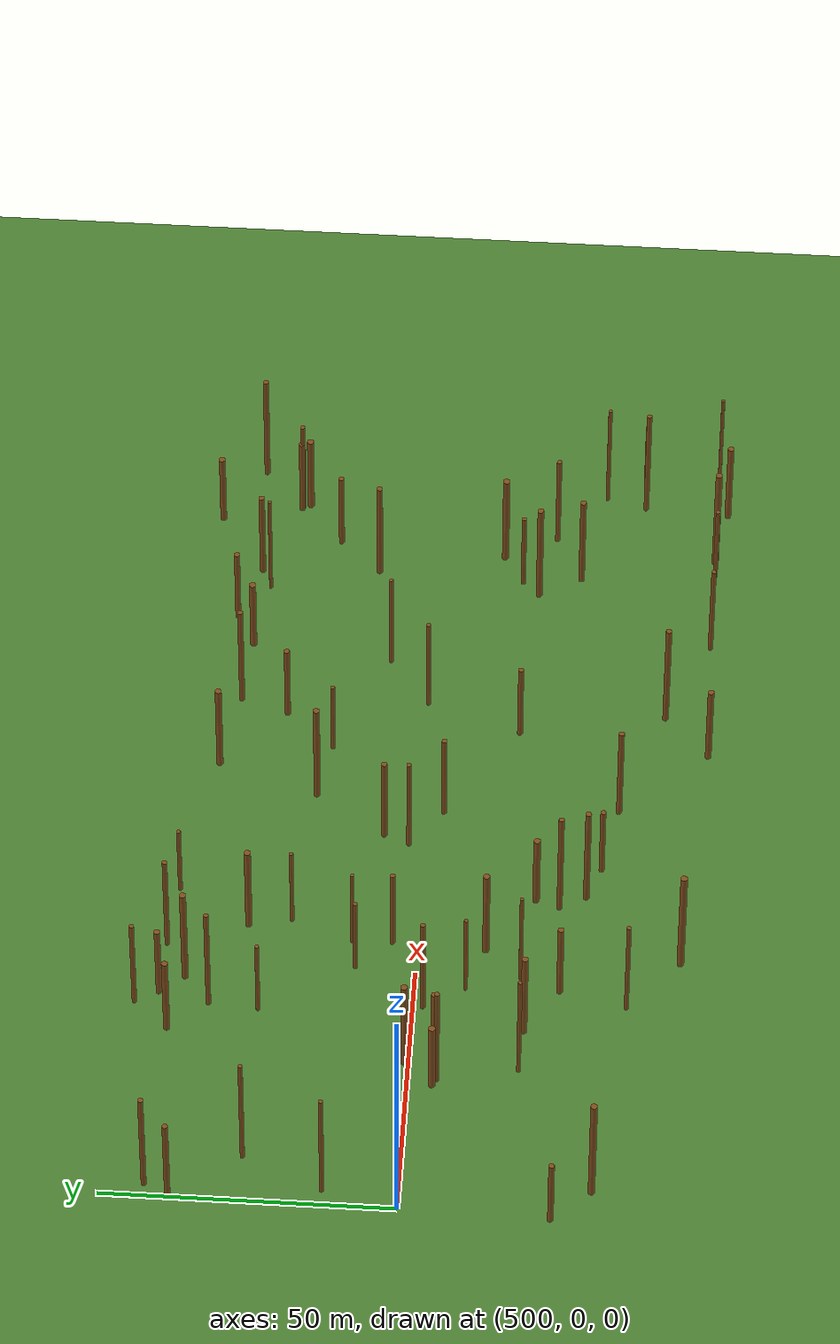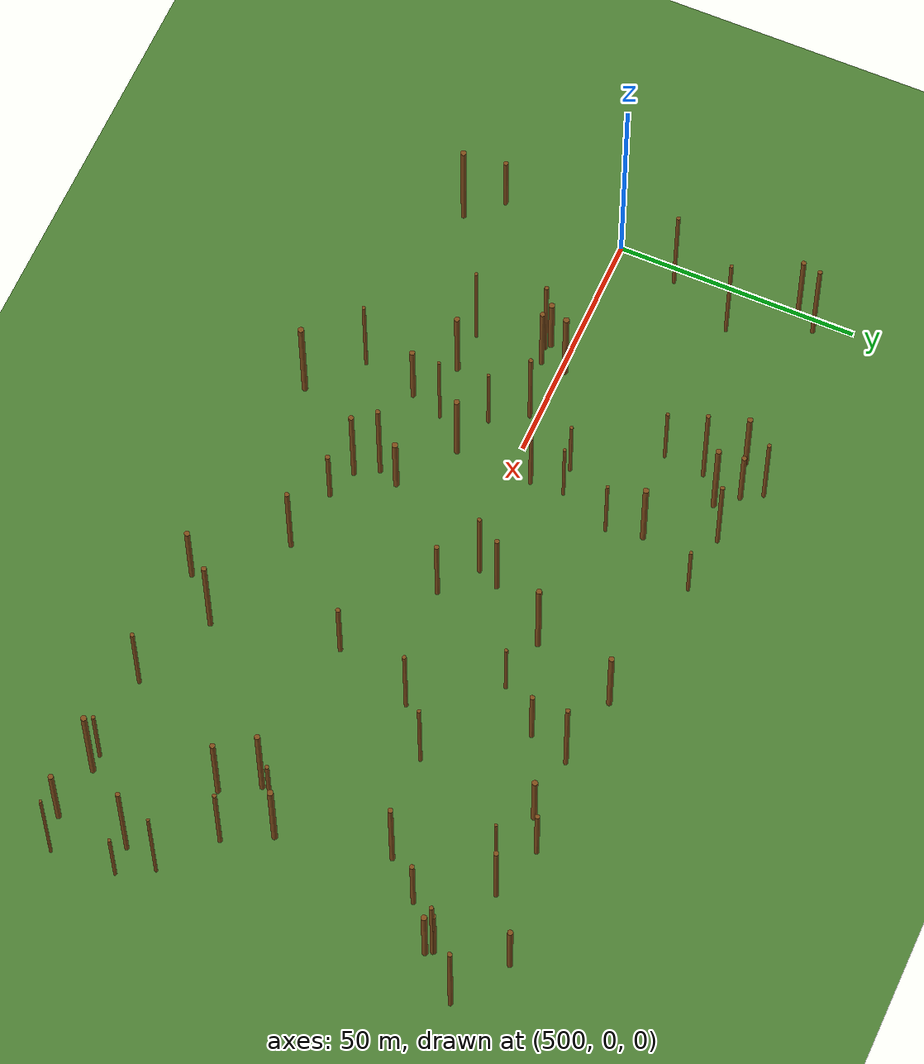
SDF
<sdf version="1.6">
 <world name="simple_forest">
  <include><uri>model://sun</uri></include>
  <model name="forest_ground">
   <pose>500 0 0 0 0 0</pose>
   <static>true</static>
   <link name="link">
    <collision name="collision">
     <geometry><plane><normal>0 0 1</normal><size>1200 200</size></plane></geometry>
     <surface><friction><ode><mu>100</mu><mu2>50</mu2></ode></friction></surface>
    </collision>
    <visual name="visual">
     <geometry><plane><normal>0 0 1</normal><size>1200 200</size></plane></geometry>
     <material><ambient>0.3 0.5 0.2 1</ambient><diffuse>0.3 0.5 0.2 1</diffuse></material>
    </visual>
   </link>
  </model>
  <model name="tree_0">
   <pose>643.0325304733049 -47.498924477733304 8.616053690744113 0 0 0</pose>
   <static>true</static>
   <link name="trunk">
    <collision name="collision">
     <geometry>
      <cylinder><radius>0.38250879551073574</radius><length>17.232107381488227</length></cylinder>
     </geometry>
    </collision>
    <visual name="visual">
     <geometry>
      <cylinder><radius>0.38250879551073574</radius><length>17.232107381488227</length></cylinder>
     </geometry>
     <material><ambient>0.5 0.3 0.1 1</ambient><diffuse>0.5 0.3 0.1 1</diffuse></material>
    </visual>
   </link>
  </model>
  <model name="tree_8">
   <pose>540.8658105401537 47.31157639793706 10.260203156366135 0 0 0</pose>
   <static>true</static>
   <link name="trunk">
    <collision name="collision">
     <geometry><cylinder><radius>0.413560313162506</radius><length>20.52040631273227</length></cylinder></geometry>
    </collision>
    <visual name="visual">
     <geometry><cylinder><radius>0.413560313162506</radius><length>20.52040631273227</length></cylinder></geometry>
     <material><ambient>0.5 0.3 0.1 1</ambient><diffuse>0.5 0.3 0.1 1</diffuse></material>
    </visual>
   </link>
  </model>
  <model name="tree_12">
   <pose>639.3275998217562 -13.516782102991577 8.547535153857439 0 0 0</pose>
   <static>true</static>
   <link name="trunk">
    <collision name="collision">
     <geometry>
      <cylinder><radius>0.4110542901350648</radius><length>17.095070307714877</length></cylinder>
     </geometry>
    </collision>
    <visual name="visual">
     <geometry>
      <cylinder><radius>0.4110542901350648</radius><length>17.095070307714877</length></cylinder>
     </geometry>
     <material><ambient>0.5 0.3 0.1 1</ambient><diffuse>0.5 0.3 0.1 1</diffuse></material>
    </visual>
   </link>
  </model>
  <model name="tree_20">
   <pose>565.7544528215193 -23.725839147706473 11.989114418012385 0 0 0</pose>
   <static>true</static>
   <link name="trunk">
    <collision name="collision">
     <geometry>
      <cylinder><radius>0.4753757970670621</radius><length>23.97822883602477</length></cylinder>
     </geometry>
    </collision>
    <visual name="visual">
     <geometry>
      <cylinder><radius>0.4753757970670621</radius><length>23.97822883602477</length></cylinder>
     </geometry>
     <material><ambient>0.5 0.3 0.1 1</ambient><diffuse>0.5 0.3 0.1 1</diffuse></material>
    </visual>
   </link>
  </model>
  <model name="tree_28">
   <pose>505.58025191979533 -32.134811946986865 11.852592849183836 0 0 0</pose>
   <static>true</static>
   <link name="trunk">
    <collision name="collision">
     <geometry>
      <cylinder><radius>0.5737883518034461</radius><length>23.70518569836767</length></cylinder>
     </geometry>
    </collision>
    <visual name="visual">
     <geometry>
      <cylinder><radius>0.5737883518034461</radius><length>23.70518569836767</length></cylinder>
     </geometry>
     <material><ambient>0.5 0.3 0.1 1</ambient><diffuse>0.5 0.3 0.1 1</diffuse></material>
    </visual>
   </link>
  </model>
  <model name="tree_49">
   <pose>554.8220593253495 -44.941167047511875 11.680137925399759 0 0 0</pose>
   <static>true</static>
   <link name="trunk">
    <collision name="collision">
     <geometry>
      <cylinder><radius>0.5997847405238179</radius><length>23.360275850799518</length></cylinder>
     </geometry>
    </collision>
    <visual name="visual">
     <geometry>
      <cylinder><radius>0.5997847405238179</radius><length>23.360275850799518</length></cylinder>
     </geometry>
     <material><ambient>0.5 0.3 0.1 1</ambient><diffuse>0.5 0.3 0.1 1</diffuse></material>
    </visual>
   </link>
  </model>
  <model name="tree_54">
   <pose>560.210640171562 21.840827529632605 8.98353912747282 0 0 0</pose>
   <static>true</static>
   <link name="trunk">
    <collision name="collision">
     <geometry>
      <cylinder><radius>0.3464390475822192</radius><length>17.96707825494564</length></cylinder>
     </geometry>
    </collision>
    <visual name="visual">
     <geometry>
      <cylinder><radius>0.3464390475822192</radius><length>17.96707825494564</length></cylinder>
     </geometry>
     <material><ambient>0.5 0.3 0.1 1</ambient><diffuse>0.5 0.3 0.1 1</diffuse></material>
    </visual>
   </link>
  </model>
  <model name="tree_58">
   <pose>599.0847553855274 17.521255360409015 8.099433069735621 0 0 0</pose>
   <static>true</static>
   <link name="trunk">
    <collision name="collision">
     <geometry>
      <cylinder><radius>0.3705611685002793</radius><length>16.198866139471242</length></cylinder>
     </geometry>
    </collision>
    <visual name="visual">
     <geometry>
      <cylinder><radius>0.3705611685002793</radius><length>16.198866139471242</length></cylinder>
     </geometry>
     <material><ambient>0.5 0.3 0.1 1</ambient><diffuse>0.5 0.3 0.1 1</diffuse></material>
    </visual>
   </link>
  </model>
  <model name="tree_67">
   <pose>657.4365545336253 -49.21768928478421 8.996893760999889 0 0 0</pose>
   <static>true</static>
   <link name="trunk">
    <collision name="collision">
     <geometry>
      <cylinder><radius>0.5451312405346385</radius><length>17.993787521999778</length></cylinder>
     </geometry>
    </collision>
    <visual name="visual">
     <geometry>
      <cylinder><radius>0.5451312405346385</radius><length>17.993787521999778</length></cylinder>
     </geometry>
     <material><ambient>0.5 0.3 0.1 1</ambient><diffuse>0.5 0.3 0.1 1</diffuse></material>
    </visual>
   </link>
  </model>
  <model name="tree_73">
   <pose>640.7422435283659 -23.80447375656518 10.258402105631957 0 0 0</pose>
   <static>true</static>
   <link name="trunk">
    <collision name="collision">
     <geometry>
      <cylinder><radius>0.5223692725043793</radius><length>20.516804211263914</length></cylinder>
     </geometry>
    </collision>
    <visual name="visual">
     <geometry>
      <cylinder><radius>0.5223692725043793</radius><length>20.516804211263914</length></cylinder>
     </geometry>
     <material><ambient>0.5 0.3 0.1 1</ambient><diffuse>0.5 0.3 0.1 1</diffuse></material>
    </visual>
   </link>
  </model>
  <model name="tree_87">
   <pose>645.0669212215514 -10.03216156399391 10.18107866239361 0 0 0</pose>
   <static>true</static>
   <link name="trunk">
    <collision name="collision">
     <geometry><cylinder><radius>0.594344906159478</radius><length>20.36215732478722</length></cylinder></geometry>
    </collision>
    <visual name="visual">
     <geometry><cylinder><radius>0.594344906159478</radius><length>20.36215732478722</length></cylinder></geometry>
     <material><ambient>0.5 0.3 0.1 1</ambient><diffuse>0.5 0.3 0.1 1</diffuse></material>
    </visual>
   </link>
  </model>
  <model name="tree_102">
   <pose>636.6114472081377 -16.48117445901991 11.25569068770366 0 0 0</pose>
   <static>true</static>
   <link name="trunk">
    <collision name="collision">
     <geometry>
      <cylinder><radius>0.5455270393609992</radius><length>22.51138137540732</length></cylinder>
     </geometry>
    </collision>
    <visual name="visual">
     <geometry>
      <cylinder><radius>0.5455270393609992</radius><length>22.51138137540732</length></cylinder>
     </geometry>
     <material><ambient>0.5 0.3 0.1 1</ambient><diffuse>0.5 0.3 0.1 1</diffuse></material>
    </visual>
   </link>
  </model>
  <model name="tree_106">
   <pose>499.4333973203326 -25.601556042156115 7.527724090690159 0 0 0</pose>
   <static>true</static>
   <link name="trunk">
    <collision name="collision">
     <geometry>
      <cylinder><radius>0.4968174033335352</radius><length>15.055448181380317</length></cylinder>
     </geometry>
    </collision>
    <visual name="visual">
     <geometry>
      <cylinder><radius>0.4968174033335352</radius><length>15.055448181380317</length></cylinder>
     </geometry>
     <material><ambient>0.5 0.3 0.1 1</ambient><diffuse>0.5 0.3 0.1 1</diffuse></material>
    </visual>
   </link>
  </model>
  <model name="tree_116">
   <pose>544.7507002932718 -36.16259384838443 10.96974906149526 0 0 0</pose>
   <static>true</static>
   <link name="trunk">
    <collision name="collision">
     <geometry>
      <cylinder><radius>0.36937844391845603</radius><length>21.93949812299052</length></cylinder>
     </geometry>
    </collision>
    <visual name="visual">
     <geometry>
      <cylinder><radius>0.36937844391845603</radius><length>21.93949812299052</length></cylinder>
     </geometry>
     <material><ambient>0.5 0.3 0.1 1</ambient><diffuse>0.5 0.3 0.1 1</diffuse></material>
    </visual>
   </link>
  </model>
  <model name="tree_119">
   <pose>588.2386200621829 19.55229864979681 11.327972880590348 0 0 0</pose>
   <static>true</static>
   <link name="trunk">
    <collision name="collision">
     <geometry>
      <cylinder><radius>0.5570196096911803</radius><length>22.655945761180696</length></cylinder>
     </geometry>
    </collision>
    <visual name="visual">
     <geometry>
      <cylinder><radius>0.5570196096911803</radius><length>22.655945761180696</length></cylinder>
     </geometry>
     <material><ambient>0.5 0.3 0.1 1</ambient><diffuse>0.5 0.3 0.1 1</diffuse></material>
    </visual>
   </link>
  </model>
  <model name="tree_122">
   <pose>550.6709866365007 10.325258894124133 8.59710817310718 0 0 0</pose>
   <static>true</static>
   <link name="trunk">
    <collision name="collision">
     <geometry>
      <cylinder><radius>0.36616160829714567</radius><length>17.19421634621436</length></cylinder>
     </geometry>
    </collision>
    <visual name="visual">
     <geometry>
      <cylinder><radius>0.36616160829714567</radius><length>17.19421634621436</length></cylinder>
     </geometry>
     <material><ambient>0.5 0.3 0.1 1</ambient><diffuse>0.5 0.3 0.1 1</diffuse></material>
    </visual>
   </link>
  </model>
  <model name="tree_125">
   <pose>626.034391364324 -47.30335480948623 10.32195991512387 0 0 0</pose>
   <static>true</static>
   <link name="trunk">
    <collision name="collision">
     <geometry>
      <cylinder><radius>0.4182060769019114</radius><length>20.64391983024774</length></cylinder>
     </geometry>
    </collision>
    <visual name="visual">
     <geometry>
      <cylinder><radius>0.4182060769019114</radius><length>20.64391983024774</length></cylinder>
     </geometry>
     <material><ambient>0.5 0.3 0.1 1</ambient><diffuse>0.5 0.3 0.1 1</diffuse></material>
    </visual>
   </link>
  </model>
  <model name="tree_131">
   <pose>655.2371086914505 25.423320405952623 8.496803411812664 0 0 0</pose>
   <static>true</static>
   <link name="trunk">
    <collision name="collision">
     <geometry>
      <cylinder><radius>0.5848835198147966</radius><length>16.993606823625328</length></cylinder>
     </geometry>
    </collision>
    <visual name="visual">
     <geometry>
      <cylinder><radius>0.5848835198147966</radius><length>16.993606823625328</length></cylinder>
     </geometry>
     <material><ambient>0.5 0.3 0.1 1</ambient><diffuse>0.5 0.3 0.1 1</diffuse></material>
    </visual>
   </link>
  </model>
  <model name="tree_133">
   <pose>568.3298861107189 -28.203545909349636 11.334490491781203 0 0 0</pose>
   <static>true</static>
   <link name="trunk">
    <collision name="collision">
     <geometry>
      <cylinder><radius>0.5098394913738452</radius><length>22.668980983562406</length></cylinder>
     </geometry>
    </collision>
    <visual name="visual">
     <geometry>
      <cylinder><radius>0.5098394913738452</radius><length>22.668980983562406</length></cylinder>
     </geometry>
     <material><ambient>0.5 0.3 0.1 1</ambient><diffuse>0.5 0.3 0.1 1</diffuse></material>
    </visual>
   </link>
  </model>
  <model name="tree_142">
   <pose>639.2292550404314 32.87073110024582 9.677435725038386 0 0 0</pose>
   <static>true</static>
   <link name="trunk">
    <collision name="collision">
     <geometry>
      <cylinder><radius>0.5121925931118231</radius><length>19.35487145007677</length></cylinder>
     </geometry>
    </collision>
    <visual name="visual">
     <geometry>
      <cylinder><radius>0.5121925931118231</radius><length>19.35487145007677</length></cylinder>
     </geometry>
     <material><ambient>0.5 0.3 0.1 1</ambient><diffuse>0.5 0.3 0.1 1</diffuse></material>
    </visual>
   </link>
  </model>
  <model name="tree_144">
   <pose>542.7911773837732 -1.6502496116803869 11.155131071525611 0 0 0</pose>
   <static>true</static>
   <link name="trunk">
    <collision name="collision">
     <geometry>
      <cylinder><radius>0.43067234790116826</radius><length>22.310262143051222</length></cylinder>
     </geometry>
    </collision>
    <visual name="visual">
     <geometry>
      <cylinder><radius>0.43067234790116826</radius><length>22.310262143051222</length></cylinder>
     </geometry>
     <material><ambient>0.5 0.3 0.1 1</ambient><diffuse>0.5 0.3 0.1 1</diffuse></material>
    </visual>
   </link>
  </model>
  <model name="tree_153">
   <pose>585.7400294790435 -2.6739511240475267 9.627519063526073 0 0 0</pose>
   <static>true</static>
   <link name="trunk">
    <collision name="collision">
     <geometry>
      <cylinder><radius>0.45927657934373034</radius><length>19.255038127052146</length></cylinder>
     </geometry>
    </collision>
    <visual name="visual">
     <geometry>
      <cylinder><radius>0.45927657934373034</radius><length>19.255038127052146</length></cylinder>
     </geometry>
     <material><ambient>0.5 0.3 0.1 1</ambient><diffuse>0.5 0.3 0.1 1</diffuse></material>
    </visual>
   </link>
  </model>
  <model name="tree_156">
   <pose>540.5053257299123 26.2189609484103 8.581923199393028 0 0 0</pose>
   <static>true</static>
   <link name="trunk">
    <collision name="collision">
     <geometry>
      <cylinder><radius>0.3555449527312986</radius><length>17.163846398786056</length></cylinder>
     </geometry>
    </collision>
    <visual name="visual">
     <geometry>
      <cylinder><radius>0.3555449527312986</radius><length>17.163846398786056</length></cylinder>
     </geometry>
     <material><ambient>0.5 0.3 0.1 1</ambient><diffuse>0.5 0.3 0.1 1</diffuse></material>
    </visual>
   </link>
  </model>
  <model name="tree_165">
   <pose>567.2112011137185 -19.616448815777233 8.092257811057308 0 0 0</pose>
   <static>true</static>
   <link name="trunk">
    <collision name="collision">
     <geometry>
      <cylinder><radius>0.5981754368130661</radius><length>16.184515622114617</length></cylinder>
     </geometry>
    </collision>
    <visual name="visual">
     <geometry>
      <cylinder><radius>0.5981754368130661</radius><length>16.184515622114617</length></cylinder>
     </geometry>
     <material><ambient>0.5 0.3 0.1 1</ambient><diffuse>0.5 0.3 0.1 1</diffuse></material>
    </visual>
   </link>
  </model>
  <model name="tree_167">
   <pose>527.3468097789157 -4.948553511124572 11.8008333291309 0 0 0</pose>
   <static>true</static>
   <link name="trunk">
    <collision name="collision">
     <geometry><cylinder><radius>0.4328163012057985</radius><length>23.6016666582618</length></cylinder></geometry>
    </collision>
    <visual name="visual">
     <geometry><cylinder><radius>0.4328163012057985</radius><length>23.6016666582618</length></cylinder></geometry>
     <material><ambient>0.5 0.3 0.1 1</ambient><diffuse>0.5 0.3 0.1 1</diffuse></material>
    </visual>
   </link>
  </model>
  <model name="tree_170">
   <pose>663.8238558201163 -34.294290661912285 7.87532434450584 0 0 0</pose>
   <static>true</static>
   <link name="trunk">
    <collision name="collision">
     <geometry>
      <cylinder><radius>0.35214406449793034</radius><length>15.75064868901168</length></cylinder>
     </geometry>
    </collision>
    <visual name="visual">
     <geometry>
      <cylinder><radius>0.35214406449793034</radius><length>15.75064868901168</length></cylinder>
     </geometry>
     <material><ambient>0.5 0.3 0.1 1</ambient><diffuse>0.5 0.3 0.1 1</diffuse></material>
    </visual>
   </link>
  </model>
  <model name="tree_175">
   <pose>651.1583761684559 40.8411445212606 7.857049184279071 0 0 0</pose>
   <static>true</static>
   <link name="trunk">
    <collision name="collision">
     <geometry>
      <cylinder><radius>0.5479893478950179</radius><length>15.714098368558142</length></cylinder>
     </geometry>
    </collision>
    <visual name="visual">
     <geometry>
      <cylinder><radius>0.5479893478950179</radius><length>15.714098368558142</length></cylinder>
     </geometry>
     <material><ambient>0.5 0.3 0.1 1</ambient><diffuse>0.5 0.3 0.1 1</diffuse></material>
    </visual>
   </link>
  </model>
  <model name="tree_189">
   <pose>547.167658413623 -8.675242920067852 9.308896795758375 0 0 0</pose>
   <static>true</static>
   <link name="trunk">
    <collision name="collision">
     <geometry>
      <cylinder><radius>0.3562747624183581</radius><length>18.61779359151675</length></cylinder>
     </geometry>
    </collision>
    <visual name="visual">
     <geometry>
      <cylinder><radius>0.3562747624183581</radius><length>18.61779359151675</length></cylinder>
     </geometry>
     <material><ambient>0.5 0.3 0.1 1</ambient><diffuse>0.5 0.3 0.1 1</diffuse></material>
    </visual>
   </link>
  </model>
  <model name="tree_191">
   <pose>553.7274426944783 42.767276084444774 10.991250145610861 0 0 0</pose>
   <static>true</static>
   <link name="trunk">
    <collision name="collision">
     <geometry>
      <cylinder><radius>0.43143482852171344</radius><length>21.982500291221722</length></cylinder>
     </geometry>
    </collision>
    <visual name="visual">
     <geometry>
      <cylinder><radius>0.43143482852171344</radius><length>21.982500291221722</length></cylinder>
     </geometry>
     <material><ambient>0.5 0.3 0.1 1</ambient><diffuse>0.5 0.3 0.1 1</diffuse></material>
    </visual>
   </link>
  </model>
  <model name="tree_197">
   <pose>555.7524261116649 -11.64139867528501 10.04120445796447 0 0 0</pose>
   <static>true</static>
   <link name="trunk">
    <collision name="collision">
     <geometry>
      <cylinder><radius>0.5765604449794686</radius><length>20.08240891592894</length></cylinder>
     </geometry>
    </collision>
    <visual name="visual">
     <geometry>
      <cylinder><radius>0.5765604449794686</radius><length>20.08240891592894</length></cylinder>
     </geometry>
     <material><ambient>0.5 0.3 0.1 1</ambient><diffuse>0.5 0.3 0.1 1</diffuse></material>
    </visual>
   </link>
  </model>
  <model name="tree_202">
   <pose>556.3982429001029 4.343006295867305 9.108886751145187 0 0 0</pose>
   <static>true</static>
   <link name="trunk">
    <collision name="collision">
     <geometry>
      <cylinder><radius>0.43660338505995033</radius><length>18.217773502290374</length></cylinder>
     </geometry>
    </collision>
    <visual name="visual">
     <geometry>
      <cylinder><radius>0.43660338505995033</radius><length>18.217773502290374</length></cylinder>
     </geometry>
     <material><ambient>0.5 0.3 0.1 1</ambient><diffuse>0.5 0.3 0.1 1</diffuse></material>
    </visual>
   </link>
  </model>
  <model name="tree_207">
   <pose>594.2786250164713 36.97003133622154 9.701531048853386 0 0 0</pose>
   <static>true</static>
   <link name="trunk">
    <collision name="collision">
     <geometry>
      <cylinder><radius>0.5622571122162925</radius><length>19.403062097706773</length></cylinder>
     </geometry>
    </collision>
    <visual name="visual">
     <geometry>
      <cylinder><radius>0.5622571122162925</radius><length>19.403062097706773</length></cylinder>
     </geometry>
     <material><ambient>0.5 0.3 0.1 1</ambient><diffuse>0.5 0.3 0.1 1</diffuse></material>
    </visual>
   </link>
  </model>
  <model name="tree_208">
   <pose>530.6915759394858 -4.307192552575778 9.549893098731822 0 0 0</pose>
   <static>true</static>
   <link name="trunk">
    <collision name="collision">
     <geometry>
      <cylinder><radius>0.5167331482711928</radius><length>19.099786197463644</length></cylinder>
     </geometry>
    </collision>
    <visual name="visual">
     <geometry>
      <cylinder><radius>0.5167331482711928</radius><length>19.099786197463644</length></cylinder>
     </geometry>
     <material><ambient>0.5 0.3 0.1 1</ambient><diffuse>0.5 0.3 0.1 1</diffuse></material>
    </visual>
   </link>
  </model>
  <model name="tree_209">
   <pose>658.2335131634565 -34.56387812284511 12.346018152871086 0 0 0</pose>
   <static>true</static>
   <link name="trunk">
    <collision name="collision">
     <geometry>
      <cylinder><radius>0.4408471802954196</radius><length>24.69203630574217</length></cylinder>
     </geometry>
    </collision>
    <visual name="visual">
     <geometry>
      <cylinder><radius>0.4408471802954196</radius><length>24.69203630574217</length></cylinder>
     </geometry>
     <material><ambient>0.5 0.3 0.1 1</ambient><diffuse>0.5 0.3 0.1 1</diffuse></material>
    </visual>
   </link>
  </model>
  <model name="tree_229">
   <pose>640.2516992258329 12.08911631303041 11.104641883353544 0 0 0</pose>
   <static>true</static>
   <link name="trunk">
    <collision name="collision">
     <geometry>
      <cylinder><radius>0.5033293375870078</radius><length>22.209283766707088</length></cylinder>
     </geometry>
    </collision>
    <visual name="visual">
     <geometry>
      <cylinder><radius>0.5033293375870078</radius><length>22.209283766707088</length></cylinder>
     </geometry>
     <material><ambient>0.5 0.3 0.1 1</ambient><diffuse>0.5 0.3 0.1 1</diffuse></material>
    </visual>
   </link>
  </model>
  <model name="tree_230">
   <pose>662.5897249135861 33.833711696251655 12.01701852036484 0 0 0</pose>
   <static>true</static>
   <link name="trunk">
    <collision name="collision">
     <geometry>
      <cylinder><radius>0.4884744311060695</radius><length>24.03403704072968</length></cylinder>
     </geometry>
    </collision>
    <visual name="visual">
     <geometry>
      <cylinder><radius>0.4884744311060695</radius><length>24.03403704072968</length></cylinder>
     </geometry>
     <material><ambient>0.5 0.3 0.1 1</ambient><diffuse>0.5 0.3 0.1 1</diffuse></material>
    </visual>
   </link>
  </model>
  <model name="tree_231">
   <pose>649.8772028016176 -19.106711604736393 10.397869026842013 0 0 0</pose>
   <static>true</static>
   <link name="trunk">
    <collision name="collision">
     <geometry>
      <cylinder><radius>0.4322469570488434</radius><length>20.795738053684026</length></cylinder>
     </geometry>
    </collision>
    <visual name="visual">
     <geometry>
      <cylinder><radius>0.4322469570488434</radius><length>20.795738053684026</length></cylinder>
     </geometry>
     <material><ambient>0.5 0.3 0.1 1</ambient><diffuse>0.5 0.3 0.1 1</diffuse></material>
    </visual>
   </link>
  </model>
  <model name="tree_234">
   <pose>535.5438499657572 41.34869744816969 8.784850422816312 0 0 0</pose>
   <static>true</static>
   <link name="trunk">
    <collision name="collision">
     <geometry>
      <cylinder><radius>0.5491417858702192</radius><length>17.569700845632624</length></cylinder>
     </geometry>
    </collision>
    <visual name="visual">
     <geometry>
      <cylinder><radius>0.5491417858702192</radius><length>17.569700845632624</length></cylinder>
     </geometry>
     <material><ambient>0.5 0.3 0.1 1</ambient><diffuse>0.5 0.3 0.1 1</diffuse></material>
    </visual>
   </link>
  </model>
  <model name="tree_242">
   <pose>565.7933084273801 41.52559087431594 7.816085205800977 0 0 0</pose>
   <static>true</static>
   <link name="trunk">
    <collision name="collision">
     <geometry>
      <cylinder><radius>0.366410160022197</radius><length>15.632170411601955</length></cylinder>
     </geometry>
    </collision>
    <visual name="visual">
     <geometry>
      <cylinder><radius>0.366410160022197</radius><length>15.632170411601955</length></cylinder>
     </geometry>
     <material><ambient>0.5 0.3 0.1 1</ambient><diffuse>0.5 0.3 0.1 1</diffuse></material>
    </visual>
   </link>
  </model>
  <model name="tree_253">
   <pose>601.1744999243497 -47.864254526362934 8.717844485820118 0 0 0</pose>
   <static>true</static>
   <link name="trunk">
    <collision name="collision">
     <geometry>
      <cylinder><radius>0.536038377136385</radius><length>17.435688971640236</length></cylinder>
     </geometry>
    </collision>
    <visual name="visual">
     <geometry>
      <cylinder><radius>0.536038377136385</radius><length>17.435688971640236</length></cylinder>
     </geometry>
     <material><ambient>0.5 0.3 0.1 1</ambient><diffuse>0.5 0.3 0.1 1</diffuse></material>
    </visual>
   </link>
  </model>
  <model name="tree_258">
   <pose>664.4470661713436 -47.421985021380166 11.44992332117377 0 0 0</pose>
   <static>true</static>
   <link name="trunk">
    <collision name="collision">
     <geometry>
      <cylinder><radius>0.30445809816921265</radius><length>22.89984664234754</length></cylinder>
     </geometry>
    </collision>
    <visual name="visual">
     <geometry>
      <cylinder><radius>0.30445809816921265</radius><length>22.89984664234754</length></cylinder>
     </geometry>
     <material><ambient>0.5 0.3 0.1 1</ambient><diffuse>0.5 0.3 0.1 1</diffuse></material>
    </visual>
   </link>
  </model>
  <model name="tree_263">
   <pose>526.2367025659532 -4.195747790231799 7.804127037472529 0 0 0</pose>
   <static>true</static>
   <link name="trunk">
    <collision name="collision">
     <geometry>
      <cylinder><radius>0.5892078549366087</radius><length>15.608254074945059</length></cylinder>
     </geometry>
    </collision>
    <visual name="visual">
     <geometry>
      <cylinder><radius>0.5892078549366087</radius><length>15.608254074945059</length></cylinder>
     </geometry>
     <material><ambient>0.5 0.3 0.1 1</ambient><diffuse>0.5 0.3 0.1 1</diffuse></material>
    </visual>
   </link>
  </model>
  <model name="tree_268">
   <pose>609.3725236199598 -40.0821538320958 11.763963686477876 0 0 0</pose>
   <static>true</static>
   <link name="trunk">
    <collision name="collision">
     <geometry>
      <cylinder><radius>0.5105338255638199</radius><length>23.52792737295575</length></cylinder>
     </geometry>
    </collision>
    <visual name="visual">
     <geometry>
      <cylinder><radius>0.5105338255638199</radius><length>23.52792737295575</length></cylinder>
     </geometry>
     <material><ambient>0.5 0.3 0.1 1</ambient><diffuse>0.5 0.3 0.1 1</diffuse></material>
    </visual>
   </link>
  </model>
  <model name="tree_269">
   <pose>654.4074982324923 26.896273010473863 8.575115331637484 0 0 0</pose>
   <static>true</static>
   <link name="trunk">
    <collision name="collision">
     <geometry>
      <cylinder><radius>0.5162519749972797</radius><length>17.150230663274968</length></cylinder>
     </geometry>
    </collision>
    <visual name="visual">
     <geometry>
      <cylinder><radius>0.5162519749972797</radius><length>17.150230663274968</length></cylinder>
     </geometry>
     <material><ambient>0.5 0.3 0.1 1</ambient><diffuse>0.5 0.3 0.1 1</diffuse></material>
    </visual>
   </link>
  </model>
  <model name="tree_277">
   <pose>604.4059903124303 -14.835381430685104 8.56369402836003 0 0 0</pose>
   <static>true</static>
   <link name="trunk">
    <collision name="collision">
     <geometry>
      <cylinder><radius>0.4733755555169564</radius><length>17.12738805672006</length></cylinder>
     </geometry>
    </collision>
    <visual name="visual">
     <geometry>
      <cylinder><radius>0.4733755555169564</radius><length>17.12738805672006</length></cylinder>
     </geometry>
     <material><ambient>0.5 0.3 0.1 1</ambient><diffuse>0.5 0.3 0.1 1</diffuse></material>
    </visual>
   </link>
  </model>
  <model name="tree_278">
   <pose>660.1689399582706 -27.575513089243444 11.726867093006724 0 0 0</pose>
   <static>true</static>
   <link name="trunk">
    <collision name="collision">
     <geometry>
      <cylinder><radius>0.33246551457817997</radius><length>23.45373418601345</length></cylinder>
     </geometry>
    </collision>
    <visual name="visual">
     <geometry>
      <cylinder><radius>0.33246551457817997</radius><length>23.45373418601345</length></cylinder>
     </geometry>
     <material><ambient>0.5 0.3 0.1 1</ambient><diffuse>0.5 0.3 0.1 1</diffuse></material>
    </visual>
   </link>
  </model>
  <model name="tree_281">
   <pose>646.2721721915331 -47.37461685464166 11.647303949798314 0 0 0</pose>
   <static>true</static>
   <link name="trunk">
    <collision name="collision">
     <geometry>
      <cylinder><radius>0.5787252872984809</radius><length>23.294607899596627</length></cylinder>
     </geometry>
    </collision>
    <visual name="visual">
     <geometry>
      <cylinder><radius>0.5787252872984809</radius><length>23.294607899596627</length></cylinder>
     </geometry>
     <material><ambient>0.5 0.3 0.1 1</ambient><diffuse>0.5 0.3 0.1 1</diffuse></material>
    </visual>
   </link>
  </model>
  <model name="tree_297">
   <pose>580.0015691294627 7.3399680885843 9.588469799217403 0 0 0</pose>
   <static>true</static>
   <link name="trunk">
    <collision name="collision">
     <geometry>
      <cylinder><radius>0.5128496884706802</radius><length>19.176939598434807</length></cylinder>
     </geometry>
    </collision>
    <visual name="visual">
     <geometry>
      <cylinder><radius>0.5128496884706802</radius><length>19.176939598434807</length></cylinder>
     </geometry>
     <material><ambient>0.5 0.3 0.1 1</ambient><diffuse>0.5 0.3 0.1 1</diffuse></material>
    </visual>
   </link>
  </model>
  <model name="tree_299">
   <pose>621.9440106711978 33.20259130717072 7.940649406489423 0 0 0</pose>
   <static>true</static>
   <link name="trunk">
    <collision name="collision">
     <geometry>
      <cylinder><radius>0.5759309255224154</radius><length>15.881298812978846</length></cylinder>
     </geometry>
    </collision>
    <visual name="visual">
     <geometry>
      <cylinder><radius>0.5759309255224154</radius><length>15.881298812978846</length></cylinder>
     </geometry>
     <material><ambient>0.5 0.3 0.1 1</ambient><diffuse>0.5 0.3 0.1 1</diffuse></material>
    </visual>
   </link>
  </model>
  <model name="tree_305">
   <pose>606.3749954204342 26.02152955468921 8.385730644736146 0 0 0</pose>
   <static>true</static>
   <link name="trunk">
    <collision name="collision">
     <geometry>
      <cylinder><radius>0.4966527031556217</radius><length>16.771461289472292</length></cylinder>
     </geometry>
    </collision>
    <visual name="visual">
     <geometry>
      <cylinder><radius>0.4966527031556217</radius><length>16.771461289472292</length></cylinder>
     </geometry>
     <material><ambient>0.5 0.3 0.1 1</ambient><diffuse>0.5 0.3 0.1 1</diffuse></material>
    </visual>
   </link>
  </model>
  <model name="tree_308">
   <pose>628.2765616474759 36.42468748314161 8.254787006965385 0 0 0</pose>
   <static>true</static>
   <link name="trunk">
    <collision name="collision">
     <geometry>
      <cylinder><radius>0.4881652220699315</radius><length>16.50957401393077</length></cylinder>
     </geometry>
    </collision>
    <visual name="visual">
     <geometry>
      <cylinder><radius>0.4881652220699315</radius><length>16.50957401393077</length></cylinder>
     </geometry>
     <material><ambient>0.5 0.3 0.1 1</ambient><diffuse>0.5 0.3 0.1 1</diffuse></material>
    </visual>
   </link>
  </model>
  <model name="tree_313">
   <pose>558.7732076249209 29.18177972653585 9.748668518254531 0 0 0</pose>
   <static>true</static>
   <link name="trunk">
    <collision name="collision">
     <geometry>
      <cylinder><radius>0.5687630296670407</radius><length>19.497337036509062</length></cylinder>
     </geometry>
    </collision>
    <visual name="visual">
     <geometry>
      <cylinder><radius>0.5687630296670407</radius><length>19.497337036509062</length></cylinder>
     </geometry>
     <material><ambient>0.5 0.3 0.1 1</ambient><diffuse>0.5 0.3 0.1 1</diffuse></material>
    </visual>
   </link>
  </model>
  <model name="tree_335">
   <pose>538.6710382012785 -19.053210343721037 9.845078025161264 0 0 0</pose>
   <static>true</static>
   <link name="trunk">
    <collision name="collision">
     <geometry><cylinder><radius>0.542587161327236</radius><length>19.69015605032253</length></cylinder></geometry>
    </collision>
    <visual name="visual">
     <geometry><cylinder><radius>0.542587161327236</radius><length>19.69015605032253</length></cylinder></geometry>
     <material><ambient>0.5 0.3 0.1 1</ambient><diffuse>0.5 0.3 0.1 1</diffuse></material>
    </visual>
   </link>
  </model>
  <model name="tree_355">
   <pose>530.7988508689489 0.7327696579786576 10.270759762090977 0 0 0</pose>
   <static>true</static>
   <link name="trunk">
    <collision name="collision">
     <geometry>
      <cylinder><radius>0.5964994456789402</radius><length>20.541519524181954</length></cylinder>
     </geometry>
    </collision>
    <visual name="visual">
     <geometry>
      <cylinder><radius>0.5964994456789402</radius><length>20.541519524181954</length></cylinder>
     </geometry>
     <material><ambient>0.5 0.3 0.1 1</ambient><diffuse>0.5 0.3 0.1 1</diffuse></material>
    </visual>
   </link>
  </model>
  <model name="tree_361">
   <pose>635.4184892807544 31.149768184760646 11.380951998517109 0 0 0</pose>
   <static>true</static>
   <link name="trunk">
    <collision name="collision">
     <geometry>
      <cylinder><radius>0.3189301611096674</radius><length>22.761903997034217</length></cylinder>
     </geometry>
    </collision>
    <visual name="visual">
     <geometry>
      <cylinder><radius>0.3189301611096674</radius><length>22.761903997034217</length></cylinder>
     </geometry>
     <material><ambient>0.5 0.3 0.1 1</ambient><diffuse>0.5 0.3 0.1 1</diffuse></material>
    </visual>
   </link>
  </model>
  <model name="tree_364">
   <pose>547.600390677644 -24.66862347973826 8.455517153669554 0 0 0</pose>
   <static>true</static>
   <link name="trunk">
    <collision name="collision">
     <geometry>
      <cylinder><radius>0.5259872756456594</radius><length>16.911034307339108</length></cylinder>
     </geometry>
    </collision>
    <visual name="visual">
     <geometry>
      <cylinder><radius>0.5259872756456594</radius><length>16.911034307339108</length></cylinder>
     </geometry>
     <material><ambient>0.5 0.3 0.1 1</ambient><diffuse>0.5 0.3 0.1 1</diffuse></material>
    </visual>
   </link>
  </model>
  <model name="tree_368">
   <pose>502.54815856869106 42.43104666269636 11.50574043700887 0 0 0</pose>
   <static>true</static>
   <link name="trunk">
    <collision name="collision">
     <geometry>
      <cylinder><radius>0.4557827560604826</radius><length>23.01148087401774</length></cylinder>
     </geometry>
    </collision>
    <visual name="visual">
     <geometry>
      <cylinder><radius>0.4557827560604826</radius><length>23.01148087401774</length></cylinder>
     </geometry>
     <material><ambient>0.5 0.3 0.1 1</ambient><diffuse>0.5 0.3 0.1 1</diffuse></material>
    </visual>
   </link>
  </model>
  <model name="tree_370">
   <pose>550.0196533711907 -17.8788571785406 10.804596107290683 0 0 0</pose>
   <static>true</static>
   <link name="trunk">
    <collision name="collision">
     <geometry>
      <cylinder><radius>0.32402067332249856</radius><length>21.609192214581366</length></cylinder>
     </geometry>
    </collision>
    <visual name="visual">
     <geometry>
      <cylinder><radius>0.32402067332249856</radius><length>21.609192214581366</length></cylinder>
     </geometry>
     <material><ambient>0.5 0.3 0.1 1</ambient><diffuse>0.5 0.3 0.1 1</diffuse></material>
    </visual>
   </link>
  </model>
  <model name="tree_379">
   <pose>578.1825605505567 2.945988153628967 10.747803683530158 0 0 0</pose>
   <static>true</static>
   <link name="trunk">
    <collision name="collision">
     <geometry>
      <cylinder><radius>0.41941021378573495</radius><length>21.495607367060316</length></cylinder>
     </geometry>
    </collision>
    <visual name="visual">
     <geometry>
      <cylinder><radius>0.41941021378573495</radius><length>21.495607367060316</length></cylinder>
     </geometry>
     <material><ambient>0.5 0.3 0.1 1</ambient><diffuse>0.5 0.3 0.1 1</diffuse></material>
    </visual>
   </link>
  </model>
  <model name="tree_386">
   <pose>546.7496476133067 39.133168235388894 11.059045520036063 0 0 0</pose>
   <static>true</static>
   <link name="trunk">
    <collision name="collision">
     <geometry>
      <cylinder><radius>0.5554086152259378</radius><length>22.118091040072127</length></cylinder>
     </geometry>
    </collision>
    <visual name="visual">
     <geometry>
      <cylinder><radius>0.5554086152259378</radius><length>22.118091040072127</length></cylinder>
     </geometry>
     <material><ambient>0.5 0.3 0.1 1</ambient><diffuse>0.5 0.3 0.1 1</diffuse></material>
    </visual>
   </link>
  </model>
  <model name="tree_390">
   <pose>556.1304645871633 11.194836262052085 9.046453587642311 0 0 0</pose>
   <static>true</static>
   <link name="trunk">
    <collision name="collision">
     <geometry>
      <cylinder><radius>0.3258646444955798</radius><length>18.092907175284623</length></cylinder>
     </geometry>
    </collision>
    <visual name="visual">
     <geometry>
      <cylinder><radius>0.3258646444955798</radius><length>18.092907175284623</length></cylinder>
     </geometry>
     <material><ambient>0.5 0.3 0.1 1</ambient><diffuse>0.5 0.3 0.1 1</diffuse></material>
    </visual>
   </link>
  </model>
  <model name="tree_401">
   <pose>609.0875187832369 34.2530004113389 11.62618133663316 0 0 0</pose>
   <static>true</static>
   <link name="trunk">
    <collision name="collision">
     <geometry>
      <cylinder><radius>0.4690854103293887</radius><length>23.25236267326632</length></cylinder>
     </geometry>
    </collision>
    <visual name="visual">
     <geometry>
      <cylinder><radius>0.4690854103293887</radius><length>23.25236267326632</length></cylinder>
     </geometry>
     <material><ambient>0.5 0.3 0.1 1</ambient><diffuse>0.5 0.3 0.1 1</diffuse></material>
    </visual>
   </link>
  </model>
  <model name="tree_403">
   <pose>654.6186777107439 26.695900091631103 10.694955961044352 0 0 0</pose>
   <static>true</static>
   <link name="trunk">
    <collision name="collision">
     <geometry>
      <cylinder><radius>0.42497603509897386</radius><length>21.389911922088704</length></cylinder>
     </geometry>
    </collision>
    <visual name="visual">
     <geometry>
      <cylinder><radius>0.42497603509897386</radius><length>21.389911922088704</length></cylinder>
     </geometry>
     <material><ambient>0.5 0.3 0.1 1</ambient><diffuse>0.5 0.3 0.1 1</diffuse></material>
    </visual>
   </link>
  </model>
  <model name="tree_404">
   <pose>503.0576795347549 12.71640102980843 12.283250849772024 0 0 0</pose>
   <static>true</static>
   <link name="trunk">
    <collision name="collision">
     <geometry>
      <cylinder><radius>0.3869014970404817</radius><length>24.566501699544048</length></cylinder>
     </geometry>
    </collision>
    <visual name="visual">
     <geometry>
      <cylinder><radius>0.3869014970404817</radius><length>24.566501699544048</length></cylinder>
     </geometry>
     <material><ambient>0.5 0.3 0.1 1</ambient><diffuse>0.5 0.3 0.1 1</diffuse></material>
    </visual>
   </link>
  </model>
  <model name="tree_416">
   <pose>499.9452614899246 38.233947636820105 9.852934266840979 0 0 0</pose>
   <static>true</static>
   <link name="trunk">
    <collision name="collision">
     <geometry>
      <cylinder><radius>0.49627801106688507</radius><length>19.705868533681958</length></cylinder>
     </geometry>
    </collision>
    <visual name="visual">
     <geometry>
      <cylinder><radius>0.49627801106688507</radius><length>19.705868533681958</length></cylinder>
     </geometry>
     <material><ambient>0.5 0.3 0.1 1</ambient><diffuse>0.5 0.3 0.1 1</diffuse></material>
    </visual>
   </link>
  </model>
  <model name="tree_417">
   <pose>541.3238417960378 34.717236539346786 11.912278654592964 0 0 0</pose>
   <static>true</static>
   <link name="trunk">
    <collision name="collision">
     <geometry>
      <cylinder><radius>0.42927833080426214</radius><length>23.824557309185927</length></cylinder>
     </geometry>
    </collision>
    <visual name="visual">
     <geometry>
      <cylinder><radius>0.42927833080426214</radius><length>23.824557309185927</length></cylinder>
     </geometry>
     <material><ambient>0.5 0.3 0.1 1</ambient><diffuse>0.5 0.3 0.1 1</diffuse></material>
    </visual>
   </link>
  </model>
  <model name="tree_419">
   <pose>574.578827442219 -30.534469811228092 7.867658748714209 0 0 0</pose>
   <static>true</static>
   <link name="trunk">
    <collision name="collision">
     <geometry>
      <cylinder><radius>0.4659668779863455</radius><length>15.735317497428419</length></cylinder>
     </geometry>
    </collision>
    <visual name="visual">
     <geometry>
      <cylinder><radius>0.4659668779863455</radius><length>15.735317497428419</length></cylinder>
     </geometry>
     <material><ambient>0.5 0.3 0.1 1</ambient><diffuse>0.5 0.3 0.1 1</diffuse></material>
    </visual>
   </link>
  </model>
  <model name="tree_420">
   <pose>509.21297383197265 26.44041147072396 12.445453503103613 0 0 0</pose>
   <static>true</static>
   <link name="trunk">
    <collision name="collision">
     <geometry>
      <cylinder><radius>0.38391620328719456</radius><length>24.890907006207225</length></cylinder>
     </geometry>
    </collision>
    <visual name="visual">
     <geometry>
      <cylinder><radius>0.38391620328719456</radius><length>24.890907006207225</length></cylinder>
     </geometry>
     <material><ambient>0.5 0.3 0.1 1</ambient><diffuse>0.5 0.3 0.1 1</diffuse></material>
    </visual>
   </link>
  </model>
  <model name="tree_425">
   <pose>610.1979171797661 1.5505732147253894 10.56534060532339 0 0 0</pose>
   <static>true</static>
   <link name="trunk">
    <collision name="collision">
     <geometry>
      <cylinder><radius>0.39838975429095785</radius><length>21.13068121064678</length></cylinder>
     </geometry>
    </collision>
    <visual name="visual">
     <geometry>
      <cylinder><radius>0.39838975429095785</radius><length>21.13068121064678</length></cylinder>
     </geometry>
     <material><ambient>0.5 0.3 0.1 1</ambient><diffuse>0.5 0.3 0.1 1</diffuse></material>
    </visual>
   </link>
  </model>
  <model name="tree_432">
   <pose>587.6880442771635 -32.948793825334064 10.598679027505447 0 0 0</pose>
   <static>true</static>
   <link name="trunk">
    <collision name="collision">
     <geometry>
      <cylinder><radius>0.48870757234360906</radius><length>21.197358055010895</length></cylinder>
     </geometry>
    </collision>
    <visual name="visual">
     <geometry>
      <cylinder><radius>0.48870757234360906</radius><length>21.197358055010895</length></cylinder>
     </geometry>
     <material><ambient>0.5 0.3 0.1 1</ambient><diffuse>0.5 0.3 0.1 1</diffuse></material>
    </visual>
   </link>
  </model>
  <model name="tree_438">
   <pose>530.222379886035 -18.624740126218285 12.06062080462005 0 0 0</pose>
   <static>true</static>
   <link name="trunk">
    <collision name="collision">
     <geometry>
      <cylinder><radius>0.35195472715719833</radius><length>24.1212416092401</length></cylinder>
     </geometry>
    </collision>
    <visual name="visual">
     <geometry>
      <cylinder><radius>0.35195472715719833</radius><length>24.1212416092401</length></cylinder>
     </geometry>
     <material><ambient>0.5 0.3 0.1 1</ambient><diffuse>0.5 0.3 0.1 1</diffuse></material>
    </visual>
   </link>
  </model>
  <model name="tree_440">
   <pose>646.8760089994669 19.331331002982083 8.461320845683566 0 0 0</pose>
   <static>true</static>
   <link name="trunk">
    <collision name="collision">
     <geometry>
      <cylinder><radius>0.4830229740236255</radius><length>16.922641691367133</length></cylinder>
     </geometry>
    </collision>
    <visual name="visual">
     <geometry>
      <cylinder><radius>0.4830229740236255</radius><length>16.922641691367133</length></cylinder>
     </geometry>
     <material><ambient>0.5 0.3 0.1 1</ambient><diffuse>0.5 0.3 0.1 1</diffuse></material>
    </visual>
   </link>
  </model>
  <model name="tree_448">
   <pose>543.1921444715663 43.30239337833078 8.186364774004614 0 0 0</pose>
   <static>true</static>
   <link name="trunk">
    <collision name="collision">
     <geometry>
      <cylinder><radius>0.5088513901940468</radius><length>16.37272954800923</length></cylinder>
     </geometry>
    </collision>
    <visual name="visual">
     <geometry>
      <cylinder><radius>0.5088513901940468</radius><length>16.37272954800923</length></cylinder>
     </geometry>
     <material><ambient>0.5 0.3 0.1 1</ambient><diffuse>0.5 0.3 0.1 1</diffuse></material>
    </visual>
   </link>
  </model>
  <model name="tree_449">
   <pose>619.5202640703474 8.683049857081514 10.84916982446552 0 0 0</pose>
   <static>true</static>
   <link name="trunk">
    <collision name="collision">
     <geometry>
      <cylinder><radius>0.37273741152308604</radius><length>21.69833964893104</length></cylinder>
     </geometry>
    </collision>
    <visual name="visual">
     <geometry>
      <cylinder><radius>0.37273741152308604</radius><length>21.69833964893104</length></cylinder>
     </geometry>
     <material><ambient>0.5 0.3 0.1 1</ambient><diffuse>0.5 0.3 0.1 1</diffuse></material>
    </visual>
   </link>
  </model>
 </world>
</sdf>
